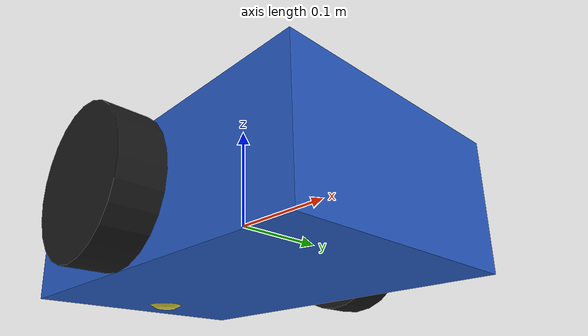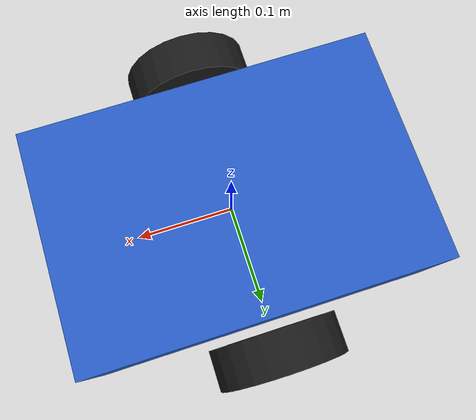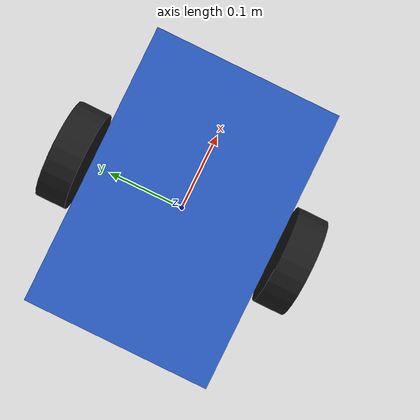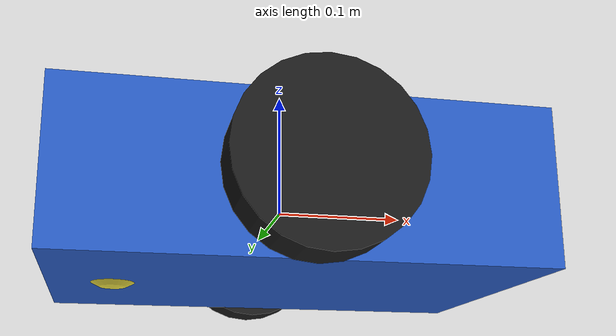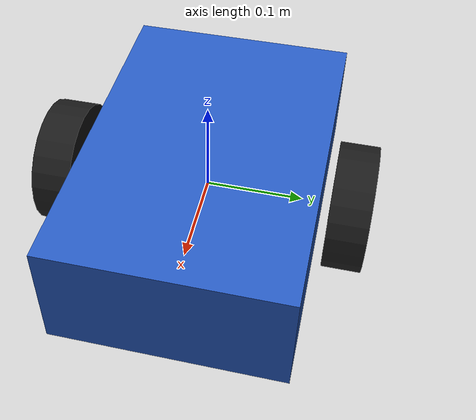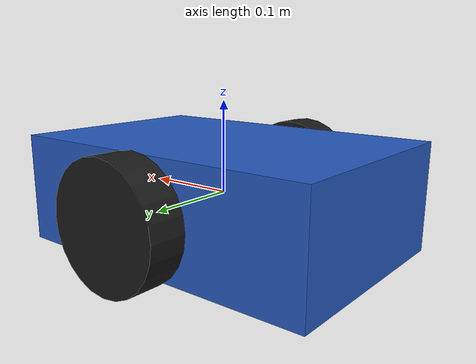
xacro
<?xml version="1.0"?>
<robot xmlns:xacro="http://www.ros.org/wiki/xacro" name="agri_bot">

  <xacro:arg name="prefix" default=""/>
  <xacro:arg name="use_lidar" default="false"/>
  <xacro:property name="P" value="$(arg prefix)"/>

  <xacro:property name="body_l" value="0.36"/>
  <xacro:property name="body_w" value="0.24"/>
  <xacro:property name="body_h" value="0.12"/>
  <xacro:property name="wheel_r" value="0.065"/>
  <xacro:property name="wheel_w" value="0.04"/>
  <xacro:property name="wheel_sep" value="0.30"/>
  <xacro:property name="mass" value="6.0"/>

  <xacro:macro name="box_inertia" params="m x y z">
    <inertial>
      <mass value="${m}"/>
      <inertia ixx="${m*(y*y+z*z)/12}" ixy="0" ixz="0"
               iyy="${m*(x*x+z*z)/12}" iyz="0"
               izz="${m*(x*x+y*y)/12}"/>
    </inertial>
  </xacro:macro>

  <link name="${P}base_link">
    <xacro:box_inertia m="${mass}" x="${body_l}" y="${body_w}" z="${body_h}"/>
    <visual>
      <geometry><box size="${body_l} ${body_w} ${body_h}"/></geometry>
      <material name="chassis"><color rgba="0.15 0.35 0.75 1"/></material>
    </visual>
    <collision>
      <geometry><box size="${body_l} ${body_w} ${body_h}"/></geometry>
    </collision>
  </link>

  <xacro:macro name="wheel" params="side reflect">
    <link name="${P}${side}_wheel">
      <inertial>
        <mass value="0.35"/>
        <inertia ixx="0.0006" ixy="0" ixz="0" iyy="0.0006" iyz="0" izz="0.001"/>
      </inertial>
      <visual>
        <origin rpy="1.5708 0 0"/>
        <geometry><cylinder radius="${wheel_r}" length="${wheel_w}"/></geometry>
        <material name="tyre"><color rgba="0.1 0.1 0.1 1"/></material>
      </visual>
      <collision>
        <origin rpy="1.5708 0 0"/>
        <geometry><cylinder radius="${wheel_r}" length="${wheel_w}"/></geometry>
      </collision>
    </link>
    <joint name="${P}${side}_wheel_joint" type="continuous">
      <parent link="${P}base_link"/>
      <child link="${P}${side}_wheel"/>
      <origin xyz="0 ${reflect*wheel_sep/2} 0"/>
      <axis xyz="0 1 0"/>
    </joint>
  </xacro:macro>

  <xacro:wheel side="left"  reflect="1"/>
  <xacro:wheel side="right" reflect="-1"/>

  <link name="${P}caster">
    <inertial>
      <mass value="0.1"/>
      <inertia ixx="1e-5" ixy="0" ixz="0" iyy="1e-5" iyz="0" izz="1e-5"/>
    </inertial>
    <visual><geometry><sphere radius="${wheel_r*0.5}"/></geometry></visual>
    <collision><geometry><sphere radius="${wheel_r*0.5}"/></geometry></collision>
  </link>
  <joint name="${P}caster_joint" type="fixed">
    <parent link="${P}base_link"/>
    <child link="${P}caster"/>
    <origin xyz="${-body_l/2 + 0.05} 0 ${-wheel_r*0.5}"/>
  </joint>

  <gazebo reference="${P}caster">
    <mu1>0.0</mu1><mu2>0.0</mu2>
  </gazebo>
  <gazebo reference="${P}left_wheel">
    <mu1>1.2</mu1><mu2>1.2</mu2>
  </gazebo>
  <gazebo reference="${P}right_wheel">
    <mu1>1.2</mu1><mu2>1.2</mu2>
  </gazebo>

  <gazebo>
    <plugin filename="gz-sim-diff-drive-system"
            name="gz::sim::systems::DiffDrive">
      <left_joint>${P}left_wheel_joint</left_joint>
      <right_joint>${P}right_wheel_joint</right_joint>
      <wheel_separation>${wheel_sep}</wheel_separation>
      <wheel_radius>${wheel_r}</wheel_radius>
      <odom_publish_frequency>30</odom_publish_frequency>
      <frame_id>${P}odom</frame_id>
      <child_frame_id>${P}base_link</child_frame_id>
      <max_linear_acceleration>1.5</max_linear_acceleration>
    </plugin>
    <plugin filename="gz-sim-joint-state-publisher-system"
            name="gz::sim::systems::JointStatePublisher"/>
  </gazebo>

  <xacro:if value="$(arg use_lidar)">
    <link name="${P}lidar_link">
      <inertial>
        <mass value="0.1"/>
        <inertia ixx="1e-5" ixy="0" ixz="0" iyy="1e-5" iyz="0" izz="1e-5"/>
      </inertial>
      <visual><geometry><cylinder radius="0.03" length="0.04"/></geometry></visual>
    </link>
    <joint name="${P}lidar_joint" type="fixed">
      <parent link="${P}base_link"/>
      <child link="${P}lidar_link"/>
      <origin xyz="${body_l/2 - 0.04} 0 ${body_h/2 + 0.02}"/>
    </joint>
    <gazebo reference="${P}lidar_link">
      <sensor name="lidar" type="gpu_lidar">
        <update_rate>10</update_rate>
        <topic>scan</topic>
        <gz_frame_id>${P}lidar_link</gz_frame_id>
        <lidar>
          <scan><horizontal>
            <samples>270</samples>
            <min_angle>-2.36</min_angle><max_angle>2.36</max_angle>
          </horizontal></scan>
          <range><min>0.1</min><max>6.0</max><resolution>0.01</resolution></range>
        </lidar>
      </sensor>
    </gazebo>
  </xacro:if>

</robot>
